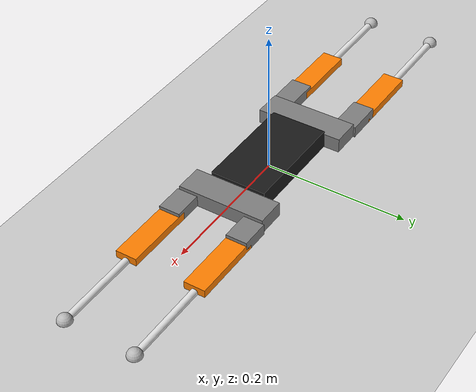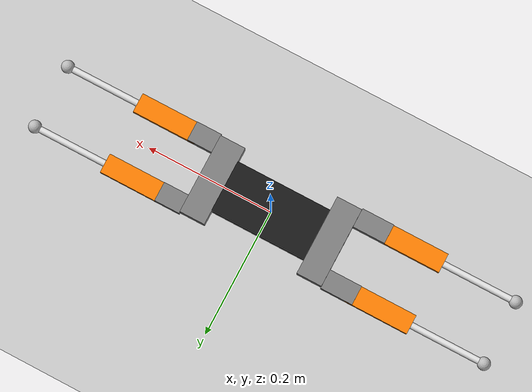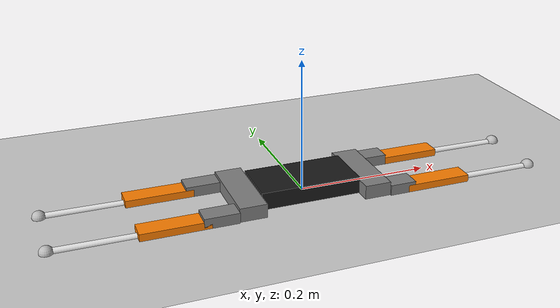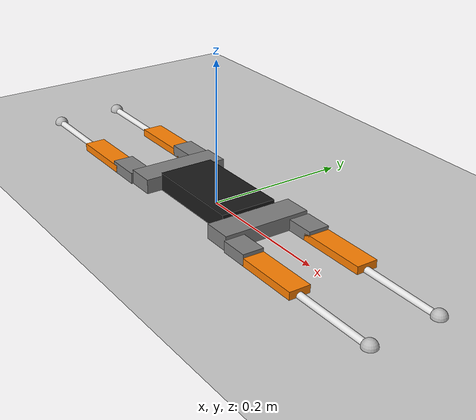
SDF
<?xml version="1.0" ?>
<sdf version="1.5">
  <world name="default">
  <physics type="ode">
    <max_step_size>0.001</max_step_size>
    <real_time_factor>1</real_time_factor>
    <real_time_update_rate>1000</real_time_update_rate>
    <max_contacts>1000</max_contacts>
    <simbody>
      <min_step_size>0.0001</min_step_size>
      <accuracy>0.001</accuracy>
      <max_transient_velocity>0.01</max_transient_velocity>
      <contact>
        <stiffness>1e8</stiffness>
        <dissipation>100</dissipation>
        <plastic_coef_restitution>0.5</plastic_coef_restitution>
        <plastic_impact_velocity>0.5</plastic_impact_velocity>
        <static_friction>0.1</static_friction>
        <dynamic_friction>0.1</dynamic_friction>
        <viscous_friction>0</viscous_friction>
        <override_impact_capture_velocity>0.001</override_impact_capture_velocity>
        <override_stiction_transition_velocity>0.001</override_stiction_transition_velocity>
      </contact>
    </simbody>
    <bullet>
      <solver>
        <type>sequential_impulse</type>
        <min_step_size>1e-5</min_step_size>
        <iters>50</iters>
        <sor>1.3</sor>
      </solver>
      <constraints>
        <cfm>0.0</cfm>
        <erp>0.2</erp>
        <contact_surface_layer>0.001</contact_surface_layer>
        <split_impulse>1</split_impulse>
        <split_impulse_penetration_threshold>-0.01</split_impulse_penetration_threshold>
      </constraints>
    </bullet>
    <ode>
      <solver>
        <type>quick</type>
        <min_step_size>1e-6</min_step_size>
        <iters>10000</iters>
        <sor>1.0</sor>
      </solver>
      <constraints>
        <cfm>0.0</cfm>
        <erp>0.6</erp>
        <contact_max_correcting_vel>1e2</contact_max_correcting_vel>
        <contact_surface_layer>1e-5</contact_surface_layer>
      </constraints>
    </ode>
  </physics>
    <!-- Ground -->
    <include>
      <uri>model://ground_plane</uri>
    </include>
    <!-- Links (Lynx) model -->
    <include>
      <uri>model://links</uri>
      <pose>0 0 0 0 0 0</pose>
    </include>
    <!-- A global light source -->
    <include>
      <uri>model://sun</uri>
    </include>
  </world>
</sdf>

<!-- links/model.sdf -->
<sdf version='1.5'>
  <model name='LINKS'>
    <plugin name="PacerPlugin" filename="libPacerGazeboPlugin.so"/>
    <plugin name="PacerPlugin" filename="libPacerGazeboPlugin.dylib"/>
    <pose>0 0 0.19 0 -0 0</pose>
    <link name='BODY0'>
      <pose>0 0 0 0 -0 0</pose>
      <inertial>
        <mass>3.6</mass>
        <inertia>
          <ixx>0.005833</ixx>
          <ixy>0.0</ixy>
          <ixz>-0.0</ixz>
          <iyy>0.003033</iyy>
          <iyz>-0.0</iyz>
          <izz>0.008633</izz>
        </inertia>
      </inertial>

      <visual name='BODY1_visual'>
        <pose>0.095 0 0 0 -0 0</pose>
        <geometry>
          <box>
            <size>0.04 0.125 0.04</size>
          </box>
        </geometry>
        <material>
          <ambient>0.2 0.2 0.2 1</ambient>
          <diffuse>0.5 0.5 0.5 1</diffuse>
          <specular>0.1 0.1 0.1 1</specular>
          <emissive>0 0 0 0</emissive>
        </material>
      <material>

      </material>
      </visual>
      <visual name='BODY0_visual'>
        <geometry>
          <box>
            <size>0.15 0.08 0.05</size>
          </box>
        </geometry>
        <material>
          <ambient>0.2 0.2 0.2 1</ambient>
          <diffuse>0.1 0.1 0.1 1</diffuse>
          <specular>0.1 0.1 0.1 1</specular>
          <emissive>0 0 0 0</emissive>
        </material>
      </visual>
      <visual name='BODYN_visual'>
        <pose>-0.095 0 0 0 -0 0</pose>
        <geometry>
          <box>
            <size>0.04 0.125 0.04</size>
          </box>
        </geometry>
        <material>
          <ambient>0.2 0.2 0.2 1</ambient>
          <diffuse>0.5 0.5 0.5 1</diffuse>
          <specular>0.1 0.1 0.1 1</specular>
          <emissive>0 0 0 0</emissive>
        </material>
      </visual>

      <collision name='BODY0_collision'>
        <geometry>
          <box>
            <size>0.15 0.08 0.05</size>
          </box>
        </geometry>
      </collision>

    </link>

    <!-- =============================== LF leg =============================== -->
    <joint name='LF_X_1' type='revolute'>
      <pose>0.0 0.0 0 0 0 0</pose>
      <parent>BODY0</parent>
      <child>LF_LEG_1</child>
      <axis>
        <xyz>1 0 0</xyz>
        <limit>
          <lower>-1e+16</lower>
          <upper>1e+16</upper>
        </limit>
        <dynamics/>
      </axis>
    </joint>

    <link name='LF_LEG_1'>
      <pose>0.115 0.05 0 0 0 0</pose>
      <inertial>
        <pose>0.020 0 0 0 0 0</pose>
        <mass>0.10</mass>
        <inertia>
          <ixx>1.5e-5</ixx>
          <ixy>0.0</ixy>
          <ixz>-0.0</ixz>
          <iyy>2.833e-5</iyy>
          <iyz>-0.0</iyz>
          <izz>2.833e-5</izz>
        </inertia>
      </inertial>

      <visual name='leg1_visual'>
        <pose>0.020 0 0 0 0 0</pose>
        <geometry>
          <box>
            <size>0.04 0.03 0.03</size>
          </box>
        </geometry>
        <material>
          <ambient>0.2 0.2 0.2 1</ambient>
          <diffuse>0.5 0.5 0.5 1</diffuse>
          <specular>0.1 0.1 0.1 1</specular>
          <emissive>0 0 0 0</emissive>
        </material>
      </visual>

    </link>

    <joint name='LF_Y_2' type='revolute'>
      <pose>0.0 0 0 0 0 0</pose>
      <parent>LF_LEG_1</parent>
      <child>LF_LEG_2</child>
      <axis>
        <xyz>0 1 0</xyz>
        <limit>
          <lower>-1e+16</lower>
          <upper>1e+16</upper>
        </limit>
        <dynamics/>
      </axis>

    </joint>

    <link name='LF_LEG_2'>
      <pose>0.155 0.05 0 0 0 0</pose>
      <inertial>
        <mass>0.10</mass>
        <inertia>
          <ixx>1.083e-5</ixx>
          <ixy>0.0</ixy>
          <ixz>-0.0</ixz>
          <iyy>0.0001233</iyy>
          <iyz>-0.0</iyz>
          <izz>0.001275</izz>
        </inertia>
      </inertial>

      <visual name='leg2_visual'>
        <pose>0.0395 0 0 0 0 0</pose>
        <geometry>
          <box>
            <size>0.1 0.03 0.02</size>
          </box>
        </geometry>
        <material>
          <ambient>0.2 0.2 0.2 1</ambient>
          <diffuse>1 0.5 0   1</diffuse>
          <specular>0.1 0.1 0.1 1</specular>
          <emissive>0 0 0 0</emissive>
        </material>
      </visual>

    </link>

    <joint name='LF_Y_3' type='revolute'>
      <pose>-0.129 0 0 0 0 0</pose>
      <parent>LF_LEG_2</parent>
      <child>LF_FOOT</child>
      <axis>
        <xyz>0 1 0</xyz>
        <limit>
          <lower>-1e+16</lower>
          <upper>1e+16</upper>
        </limit>
        <dynamics/>
      </axis>

    </joint>

    <link name='LF_FOOT'>
      <pose>0.361 0.05 0 0 0 0</pose>
      <inertial>
        <pose>-0.0645 0 0 0 0 0</pose>
        <mass>0.10</mass>
        <inertia>
          <ixx>5e-7</ixx>
          <ixy>-1.215e-10</ixy>
          <ixz>-0.0</ixz>
          <iyy>3.358e-5</iyy>
          <iyz>-0.0</iyz>
          <izz>3.358e-5</izz>
        </inertia>
      </inertial>

      <visual name='leg3_visual'>
        <pose>-0.0645 0 0 0 1.579 0</pose>
        <geometry>
          <cylinder>
            <radius>0.005</radius>
            <length>0.129</length>
          </cylinder>
        </geometry>
        <material>
          <ambient>0.2 0.2 0.2 1</ambient>
          <diffuse>0.9 0.9 0.9   1</diffuse>
          <specular>0.1 0.1 0.1 1</specular>
          <emissive>0 0 0 0</emissive>
        </material>
      </visual>

      <visual name='LF_FOOT_visual'>
        <pose>0 0 0 0 0 0</pose>
        <geometry>
          <sphere>
            <radius>0.01</radius>
          </sphere>
        </geometry>
      </visual>

      <collision name='LF_FOOT_collision'>
        <pose>0 0 0 0 0 0</pose>
        <geometry>
          <sphere>
            <radius>0.01</radius>
          </sphere>
        </geometry>
        <surface>
          <restitution_coefficient>0</restitution_coefficient>
          <friction>
            <ode>
              <mu>1</mu>
              <mu2>1</mu2>
            </ode>
          </friction>
        </surface>
      </collision>

      <sensor name='LF_FOOT_contact' type='contact'>
        <contact>
          <collision>LF_FOOT_collision</collision>
        </contact>
        <update_rate>1000</update_rate>
      </sensor>
    </link>

    <!-- =============================== RF leg =============================== -->
    <joint name='RF_X_1' type='revolute'>
      <pose>-0.025 0 0 0 0 0</pose>
      <parent>BODY0</parent>
      <child>RF_LEG_1</child>
      <axis>
        <xyz>1 0 0</xyz>
        <limit>
          <lower>-1e+16</lower>
          <upper>1e+16</upper>
        </limit>
        <dynamics/>
      </axis>

    </joint>

    <link name='RF_LEG_1'>
      <pose>0.115 -0.05 0 0 0 0</pose>
      <inertial>
        <mass>0.10</mass>
        <inertia>
          <ixx>1.5e-5</ixx>
          <ixy>0.0</ixy>
          <ixz>-0.0</ixz>
          <iyy>2.833e-5</iyy>
          <iyz>-0.0</iyz>
          <izz>2.833e-5</izz>
        </inertia>
      </inertial>

      <visual name='leg1_visual'>
        <pose>0.020 0 0 0 0 0</pose>
        <geometry>
          <box>
            <size>0.04 0.03 0.03</size>
          </box>
        </geometry>
        <material>
          <ambient>0.2 0.2 0.2 1</ambient>
          <diffuse>0.5 0.5 0.5 1</diffuse>
          <specular>0.1 0.1 0.1 1</specular>
          <emissive>0 0 0 0</emissive>
        </material>
      </visual>
    </link>

    <joint name='RF_Y_2' type='revolute'>
      <pose>0.0 0 0 0 0 0</pose>
      <parent>RF_LEG_1</parent>
      <child>RF_LEG_2</child>
      <axis>
        <xyz>0 -1 0</xyz>
        <limit>
          <lower>-1e+16</lower>
          <upper>1e+16</upper>
        </limit>
        <dynamics/>
      </axis>
    </joint>

    <link name='RF_LEG_2'>
      <pose>0.155 -0.05 0 0 0 0</pose>
      <inertial>
        <mass>0.10</mass>
        <inertia>
          <ixx>1.083e-5</ixx>
          <ixy>0.0</ixy>
          <ixz>-0.0</ixz>
          <iyy>0.0001233</iyy>
          <iyz>-0.0</iyz>
          <izz>0.001275</izz>
        </inertia>
      </inertial>

      <visual name='leg2_visual'>
        <pose>0.0395 0 0 0 0 0</pose>
        <geometry>
          <box>
            <size>0.1 0.03 0.02</size>
          </box>
        </geometry>
        <material>
          <ambient>0.2 0.2 0.2 1</ambient>
          <diffuse>1 0.5 0   1</diffuse>
          <specular>0.1 0.1 0.1 1</specular>
          <emissive>0 0 0 0</emissive>
        </material>
      </visual>

    </link>

    <joint name='RF_Y_3' type='revolute'>
      <pose>-0.129 0 0 0 0 0</pose>
      <parent>RF_LEG_2</parent>
      <child>RF_FOOT</child>
      <axis>
        <xyz>0 -1 0</xyz>
        <limit>
          <lower>-1e+16</lower>
          <upper>1e+16</upper>
        </limit>
        <dynamics/>
      </axis>
    </joint>

    <link name='RF_FOOT'>
      <pose>0.361 -0.05 0 0 0 0</pose>
      <inertial>
        <pose>-0.0645 0 0 0 0 0</pose>
        <mass>0.10</mass>
        <inertia>
          <ixx>5e-7</ixx>
          <ixy>-1.215e-10</ixy>
          <ixz>-0.0</ixz>
          <iyy>3.358e-5</iyy>
          <iyz>-0.0</iyz>
          <izz>3.358e-5</izz>
        </inertia>
      </inertial>

      <visual name='leg3_visual'>
        <pose>-0.0645 0 0 0 1.579 0</pose>
        <geometry>
          <cylinder>
            <radius>0.005</radius>
            <length>0.129</length>
          </cylinder>
        </geometry>
        <material>
          <ambient>0.2 0.2 0.2 1</ambient>
          <diffuse>0.9 0.9 0.9   1</diffuse>
          <specular>0.1 0.1 0.1 1</specular>
          <emissive>0 0 0 0</emissive>
        </material>
      </visual>

      <visual name='RF_FOOT_visual'>
        <pose>0 0 0 0 0 0</pose>
        <geometry>
          <sphere>
            <radius>0.01</radius>
          </sphere>
        </geometry>
      </visual>

      <collision name='RF_FOOT_collision'>
        <pose>0 0 0 0 0 0</pose>
        <geometry>
          <sphere>
            <radius>0.01</radius>
          </sphere>
        </geometry>
        <surface>
          <restitution_coefficient>0</restitution_coefficient>
          <friction>
            <ode>
              <mu>1</mu>
              <mu2>1</mu2>
            </ode>
          </friction>
        </surface>
      </collision>

      <sensor name='RF_FOOT_contact' type='contact'>
        <contact>
          <collision>RF_FOOT_collision</collision>
        </contact>
        <update_rate>1000</update_rate>
      </sensor>
    </link>

    <!-- =============================== LH leg =============================== -->
    <joint name='LH_X_1' type='revolute'>
      <pose>0.0 0 0 0 0 0</pose>
      <parent>BODY0</parent>
      <child>LH_LEG_1</child>
      <axis>
        <xyz>-1 0 0</xyz>
        <limit>
          <lower>-1e+16</lower>
          <upper>1e+16</upper>
        </limit>
        <dynamics/>
      </axis>

    </joint>

    <link name='LH_LEG_1'>
      <pose>-0.115 0.05 0 0 0 0</pose>
      <inertial>
        <pose>-0.0255 0 0 0 0 0</pose>
        <mass>0.10</mass>
        <inertia>
          <ixx>1.5e-5</ixx>
          <ixy>0.0</ixy>
          <ixz>-0.0</ixz>
          <iyy>2.833e-5</iyy>
          <iyz>-0.0</iyz>
          <izz>2.833e-5</izz>
        </inertia>
      </inertial>

      <visual name='leg1_visual'>
        <pose>-0.0255 0 0 0 0 0</pose>
        <geometry>
          <box>
            <size>0.051 0.03 0.03</size>
          </box>
        </geometry>
        <material>
          <ambient>0.2 0.2 0.2 1</ambient>
          <diffuse>0.5 0.5 0.5 1</diffuse>
          <specular>0.1 0.1 0.1 1</specular>
          <emissive>0 0 0 0</emissive>
        </material>
      </visual>
    </link>

    <joint name='LH_Y_2' type='revolute'>
      <pose>0 0 0 0 0 0</pose>
      <parent>LH_LEG_1</parent>
      <child>LH_LEG_2</child>
      <axis>
        <xyz>0 1 0</xyz>
        <limit>
          <lower>-1e+16</lower>
          <upper>1e+16</upper>
        </limit>
        <dynamics/>
      </axis>

    </joint>

    <link name='LH_LEG_2'>
      <pose>-0.166 0.05 0 0 0 0</pose>
      <inertial>
        <pose>-0.0385 0 0 0 0 0</pose>
        <mass>0.10</mass>
        <inertia>
          <ixx>1.083e-5</ixx>
          <ixy>0.0</ixy>
          <ixz>-0.0</ixz>
          <iyy>0.0001233</iyy>
          <iyz>-0.0</iyz>
          <izz>0.001275</izz>
        </inertia>
      </inertial>

      <visual name='leg2_visual'>
        <pose>-0.0385 0 0 0 0 0</pose>
        <geometry>
          <box>
            <size>0.1 0.03 0.02</size>
          </box>
        </geometry>
        <material>
          <ambient>0.2 0.2 0.2 1</ambient>
          <diffuse>1 0.5 0   1</diffuse>
          <specular>0.1 0.1 0.1 1</specular>
          <emissive>0 0 0 0</emissive>
        </material>
      </visual>

    </link>

    <joint name='LH_Y_3' type='revolute'>
      <pose>0.129 0 0 0 0 0</pose>
      <parent>LH_LEG_2</parent>
      <child>LH_FOOT</child>
      <axis>
        <xyz>0 1 0</xyz>
        <limit>
          <lower>-1e+16</lower>
          <upper>1e+16</upper>
        </limit>
        <dynamics/>
      </axis>

    </joint>

    <link name='LH_FOOT'>
      <pose>-0.372 0.05 0 0 0 0</pose>
      <inertial>
        <pose>0.0645 0 0 0 0 0</pose>
        <mass>0.10</mass>
        <inertia>
          <ixx>5e-7</ixx>
          <ixy>-1.215e-10</ixy>
          <ixz>-0.0</ixz>
          <iyy>3.358e-5</iyy>
          <iyz>-0.0</iyz>
          <izz>3.358e-5</izz>
        </inertia>
      </inertial>

      <visual name='leg3_visual'>
        <pose>0.0645 0 0 0 1.579 0</pose>
        <geometry>
          <cylinder>
            <radius>0.005</radius>
            <length>0.129</length>
          </cylinder>
        </geometry>
        <material>
          <ambient>0.2 0.2 0.2 1</ambient>
          <diffuse>0.9 0.9 0.9   1</diffuse>
          <specular>0.1 0.1 0.1 1</specular>
          <emissive>0 0 0 0</emissive>
        </material>
      </visual>

      <visual name='LH_FOOT_visual'>
        <pose>0 0 0 0 0 0</pose>
        <geometry>
          <sphere>
            <radius>0.01</radius>
          </sphere>
        </geometry>
      </visual>

      <collision name='LH_FOOT_collision'>
        <pose>0 0 0 0 0 0</pose>
        <geometry>
          <sphere>
            <radius>0.01</radius>
          </sphere>
        </geometry>
        <surface>
          <restitution_coefficient>0</restitution_coefficient>
          <friction>
            <ode>
              <mu>1</mu>
              <mu2>1</mu2>
            </ode>
          </friction>
        </surface>
      </collision>

      <sensor name='LH_FOOT_contact' type='contact'>
        <contact>
          <collision>LH_FOOT_collision</collision>
        </contact>
        <update_rate>1000</update_rate>
      </sensor>
    </link>

    <!-- =============================== RH leg =============================== -->
    <joint name='RH_X_1' type='revolute'>
      <pose>0 0 0 0 0 0</pose>
      <parent>BODY0</parent>
      <child>RH_LEG_1</child>
      <axis>
        <xyz>-1 0 0</xyz>
        <limit>
          <lower>-1e+16</lower>
          <upper>1e+16</upper>
        </limit>
        <dynamics/>
      </axis>
    </joint>

    <link name='RH_LEG_1'>
      <pose>-0.115 -0.05 0 0 0 0</pose>
      <inertial>
        <pose>-0.0255 0 0 0 0 0</pose>
        <mass>0.10</mass>
        <inertia>
          <ixx>1.5e-5</ixx>
          <ixy>0.0</ixy>
          <ixz>-0.0</ixz>
          <iyy>2.833e-5</iyy>
          <iyz>-0.0</iyz>
          <izz>2.833e-5</izz>
        </inertia>
      </inertial>

      <visual name='leg1_visual'>
        <pose>-0.0255 0 0 0 0 0</pose>
        <geometry>
          <box>
            <size>0.051 0.03 0.03</size>
          </box>
        </geometry>
        <material>
          <ambient>0.2 0.2 0.2 1</ambient>
          <diffuse>0.5 0.5 0.5 1</diffuse>
          <specular>0.1 0.1 0.1 1</specular>
          <emissive>0 0 0 0</emissive>
        </material>
      </visual>

    </link>

    <joint name='RH_Y_2' type='revolute'>
      <pose>0 0 0 0 0 0</pose>
      <parent>RH_LEG_1</parent>
      <child>RH_LEG_2</child>
      <axis>
        <xyz>0 -1 0</xyz>
        <limit>
          <lower>-1e+16</lower>
          <upper>1e+16</upper>
        </limit>
        <dynamics/>
      </axis>

    </joint>

    <link name='RH_LEG_2'>
      <pose>-0.166 -0.05 0 0 0 0</pose>
      <inertial>
        <pose>-0.0385 0 0 0 0 0</pose>
        <mass>0.10</mass>
        <inertia>
          <ixx>1.083e-5</ixx>
          <ixy>0.0</ixy>
          <ixz>-0.0</ixz>
          <iyy>0.0001233</iyy>
          <iyz>-0.0</iyz>
          <izz>0.001275</izz>
        </inertia>
      </inertial>

      <visual name='leg2_visual'>
        <pose>-0.0385 0 0 0 0 0</pose>
        <geometry>
          <box>
            <size>0.1 0.03 0.02</size>
          </box>
        </geometry>
        <material>
          <ambient>0.2 0.2 0.2 1</ambient>
          <diffuse>1 0.5 0   1</diffuse>
          <specular>0.1 0.1 0.1 1</specular>
          <emissive>0 0 0 0</emissive>
        </material>
      </visual>

    </link>

    <joint name='RH_Y_3' type='revolute'>
      <pose>0.129 0 0 0 0 0</pose>
      <parent>RH_LEG_2</parent>
      <child>RH_FOOT</child>
      <axis>
        <xyz>0 -1 0</xyz>
        <limit>
          <lower>-1e+16</lower>
          <upper>1e+16</upper>
        </limit>
        <dynamics/>
      </axis>

    </joint>

    <link name='RH_FOOT'>
      <pose>-0.372 -0.05 0 0 0 0</pose>
      <inertial>
        <pose>0.0645 0 0 0 0 0</pose>
        <mass>0.10</mass>
        <inertia>
          <ixx>5e-7</ixx>
          <ixy>-1.215e-10</ixy>
          <ixz>-0.0</ixz>
          <iyy>3.358e-5</iyy>
          <iyz>-0.0</iyz>
          <izz>3.358e-5</izz>
        </inertia>
      </inertial>

      <visual name='leg3_visual'>
        <pose>0.0645 0 0 0 1.579 0</pose>
        <geometry>
          <cylinder>
            <radius>0.005</radius>
            <length>0.129</length>
          </cylinder>
        </geometry>
        <material>
          <ambient>0.2 0.2 0.2 1</ambient>
          <diffuse>0.9 0.9 0.9   1</diffuse>
          <specular>0.1 0.1 0.1 1</specular>
          <emissive>0 0 0 0</emissive>
        </material>
      </visual>

      <visual name='RH_FOOT_visual'>
        <pose>0 0 0 0 0 0</pose>
        <geometry>
          <sphere>
            <radius>0.01</radius>
          </sphere>
        </geometry>
      </visual>

      <collision name='RH_FOOT_collision'>
        <pose>0 0 0 0 0 0</pose>
        <geometry>
          <sphere>
            <radius>0.01</radius>
          </sphere>
        </geometry>
        <surface>
          <restitution_coefficient>0</restitution_coefficient>
          <friction>
            <ode>
              <mu>1</mu>
              <mu2>1</mu2>
            </ode>
          </friction>
        </surface>
      </collision>

      <sensor name='RH_FOOT_contact' type='contact'>
        <contact>
          <collision>RH_FOOT_collision</collision>
        </contact>
        <update_rate>1000</update_rate>
      </sensor>
    </link>
  </model>
</sdf>
